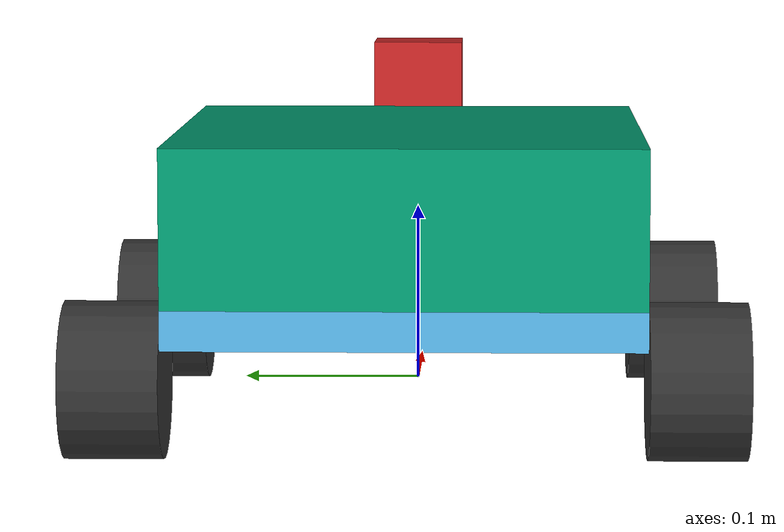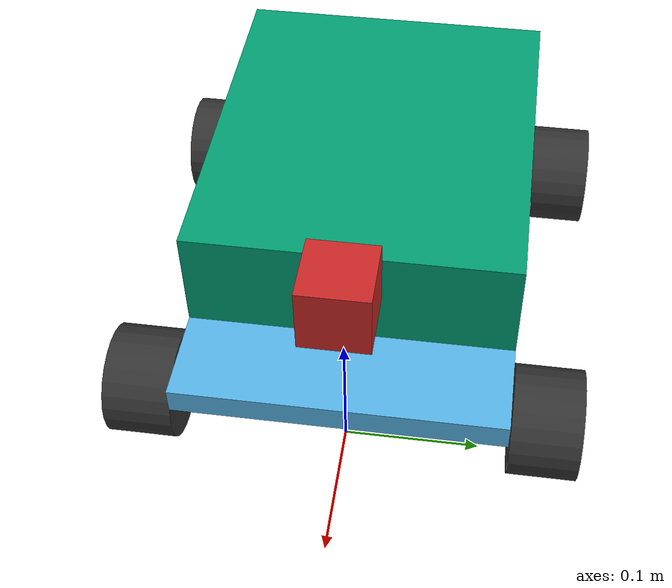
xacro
<?xml version="1.0" encoding="utf-8"?>
<robot xmlns:xacro="http://www.ros.org/wiki/xacro" name="body" >

  <xacro:include filename="$(find robot_description)/urdf/common.xacro" />
  <xacro:include filename="$(find robot_description)/urdf/gazebo.xacro" />

  <link name="base_footprint" />

  <link name="base_link" >
    <visual>
      <geometry>
        <box size="${body_length} ${body_width} ${body_height}" />
      </geometry>
    </visual>
    <collision>
      <geometry>
        <box size="${body_length} ${body_width} ${body_height}" />
      </geometry>
    </collision>
    <inertial>
      <mass value="${body_mass}" />
      <origin xyz="0 0 0" />
      <inertia
        ixx="${1/12 * body_mass * (body_height**2 + body_width**2)}" ixy="0.0" ixz="0.0"
        iyy="${1/12 * body_mass * (body_length**2 + body_height**2)}" iyz="0.0"
        izz="${1/12 * body_mass * (body_width**2 + body_length**2)}" />
    </inertial>
  </link>

  <link name="back_link" >
    <visual>
      <geometry>
        <box size="${body_length*0.8} ${body_width} ${body_height*4}" />
      </geometry>
    </visual>
    <collision>
      <geometry>
        <box size="${body_length*0.8} ${body_width} ${body_height*4}" />
      </geometry>
    </collision>
    <inertial>
      <mass value="${body_mass}" />
      <origin xyz="0 0 0" />
      <inertia
        ixx="${1/12 * body_mass * (body_height**2 + body_width**2)}" ixy="0.0" ixz="0.0"
        iyy="${1/12 * body_mass * (body_length**2 + body_height**2)}" iyz="0.0"
        izz="${1/12 * body_mass * (body_width**2 + body_length**2)}" />
    </inertial>
  </link>
  <gazebo reference="back_link" >
    <material value="Gazebo/Blue" />
  </gazebo>

  <joint name="base_footprint_to_base_link" type="fixed" >
    <parent link="base_footprint" />
    <child link="base_link" />
    <origin xyz="${-body_length/2 + wheel_radius} 0 ${wheel_radius + wheel_z_offset}" rpy="0 0 0" />
  </joint>

  <joint name="base_footprint_to_back_link" type="fixed" >
    <parent link="base_link" />
    <child link="back_link" />
    <origin xyz="${-body_length*0.1} 0 ${body_height*2 + body_height/2}" rpy="0 0 0" />
  </joint>

  <xacro:create_wheel name="left_front" xyz="${body_length/2 - wheel_radius} ${body_width/2 + wheel_width/2 + wheel_offset} ${-wheel_z_offset}" friction="100.0" type="continuous" mass="${wheel_mass}"  />
  <xacro:create_wheel name="right_front" xyz="${body_length/2 - wheel_radius} ${-body_width/2 - wheel_width/2 - wheel_offset} ${-wheel_z_offset}" friction="100.0" type="continuous" mass="${wheel_mass}" />
  <xacro:create_wheel name="left_back" xyz="${-body_length/2 + wheel_radius} ${body_width/2 + wheel_width/2 + wheel_offset} ${-wheel_z_offset}"  friction="0.0" type="fixed" mass="${wheel_mass}" />
  <xacro:create_wheel name="right_back" xyz="${-body_length/2 + wheel_radius} ${-body_width/2 - wheel_width/2 - wheel_offset} ${-wheel_z_offset}" friction="0.0" type="fixed" mass="${wheel_mass}" />

  <joint name="camera_joint" type="fixed">
    <axis xyz="0 0 0" />
    <origin xyz="${body_length/2 - 0.025} 0 0.1" rpy="0 ${0 * pi/180.0} 0"/>
    <parent link="base_link"/>
    <child link="bot_camera_link"/>
  </joint>

  <!-- Camera -->
  <link name="bot_camera_link">
    <collision>
      <origin xyz="0 0 0" rpy="0 0 0"/>
      <geometry>
    <box size="0.05 0.05 0.05"/>
      </geometry>
    </collision>

    <visual>
      <origin xyz="0 0 0" rpy="0 0 0"/>
      <geometry>
    <box size="0.05 0.05 0.05"/>
      </geometry>
      <material name="red"/>
    </visual>

    <inertial>
      <mass value="1e-5" />
      <origin xyz="0 0 0" rpy="0 0 0"/>
      <inertia ixx="1e-6" ixy="0" ixz="0" iyy="1e-6" iyz="0" izz="1e-6" />
    </inertial>
  </link>

</robot>

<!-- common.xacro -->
<robot xmlns:xacro="http://www.ros.org/wiki/xacro" >
  <xacro:property name="body_length" value="0.35" />
  <xacro:property name="body_width" value="0.24" />
  <xacro:property name="body_height" value="0.02" />
  <xacro:property name="body_mass" value="4.0" />
  <xacro:property name="wheel_z_offset" value="0.03" />
  <xacro:property name="wheel_radius" value="0.04" />
  <xacro:property name="wheel_width" value="0.05" />
  <xacro:property name="wheel_mass" value="0.3" />
  <xacro:property name="wheel_offset" value="0.001" />
  <xacro:property name="camera_x" value="0.075" />
  <xacro:property name="camera_z" value="0.45" />
  <xacro:property name="camera_angle" value="${39 * pi/180.0}" /> <!--25 for realsense model-->
  <xacro:property name="arm_x_offset" value="${body_length/2 - 0.06 - 0.02 + 0.0064}" />
  <xacro:property name="arm_z_offset" value="${body_height}" />
  <xacro:property name="laser_x" value="0.0" />
  <xacro:property name="laser_y" value="0.0" />
  <xacro:property name="laser_z" value="${0.05}" />

  <xacro:macro name="create_wheel" params="name xyz friction type mass">
    <link name="${name}_wheel_link">
      <visual>
        <origin xyz="0 0 0" rpy="${pi/2} 0 ${pi}" />
        <geometry>
          <cylinder length="${wheel_width}" radius="${wheel_radius}"/>
        </geometry>
        <material name="blackish">
          <color rgba="0.2 0.2 0.2 1"/>
        </material>
      </visual>
      <collision>
        <origin xyz="0 0 0" rpy="${pi/2} 0 0" />
        <geometry>
          <cylinder length="${wheel_width}" radius="${wheel_radius}"/>>
        </geometry>
      </collision>
      <inertial>
        <mass value="${mass}" />
        <inertia ixx="${0.0833333 * mass * (3 * wheel_radius**2 + wheel_width**2)}" ixy="0.0" ixz="0.0"
          iyy="${0.5 * mass * wheel_radius**2}" iyz="0.0"
          izz="${0.083333 * mass *(3 * wheel_radius**2 + wheel_width**2)}" />
      </inertial>
    </link>

    <gazebo reference="${name}_wheel_link">
      <mu1 value="${friction}"/>
      <mu2 value="${friction}"/>
      <kp  value="1000000.0" />
      <kd  value="1.0" />
      <maxVel  value="1.0" />
      <minDepth  value="0.0" />
      <material value="Gazebo/FlatBlack" />
    </gazebo>

    <joint name="${name}_wheel_joint" type="${type}">
      <origin xyz="${xyz}" rpy="0 0 0" />
      <parent link="base_link"/>
      <child link="${name}_wheel_link"/>
      <axis xyz="0 1 0"/>

      <calibration rising="0.0"/>
      <dynamics damping="1.0" friction="0.0"/>
      <limit effort="400" velocity="50.0" />
      <safety_controller k_velocity="50" />
    </joint>
  </xacro:macro>

</robot>
